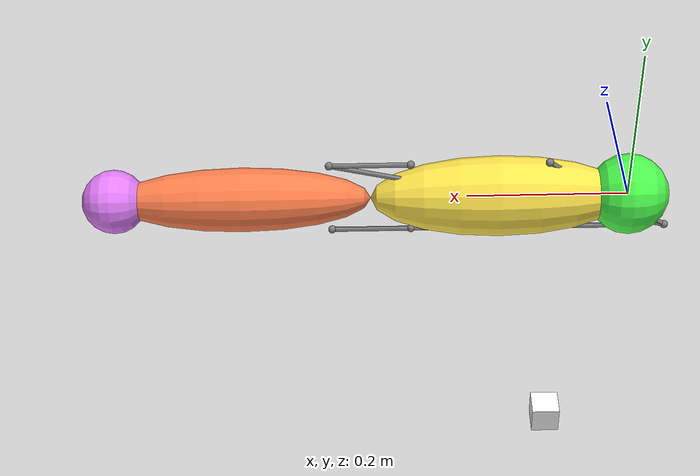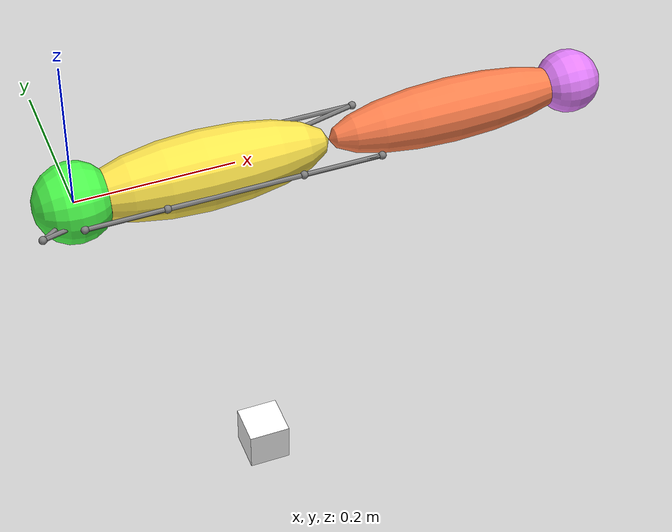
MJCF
<mujoco model="template">
	<compiler angle="radian" autolimits="true"/>
	<option timestep="0.005"/>
	<size njmax="1000" nconmax="400" nkey="1" nuser_jnt="1"/>
	<visual>
		<scale framelength="0.5" framewidth="0.01"/>
	</visual>
	<asset>
		<texture type="skybox" builtin="gradient" rgb1="1 1 1" rgb2="0.6 0.8 1" width="256" height="1536"/>
		<texture name="grid" type="2d" builtin="checker" width="512" height="512" rgb1=".1 .2 .3" rgb2=".2 .3 .4"/>
		<material name="grid" texture="grid" texrepeat="1 1" texuniform="true" reflectance=".2"/>
	</asset>
	<worldbody>
		<light directional="true"/>
		<site name="baseProximalOrigin" pos="-.05 -0.05 0" size="0.005"/>
		<site name="baseDistalOrigin" pos="0.0 -.05 0" size="0.005"/>
		<body name="ground" euler="1.571 0 0">
			<body name="base" pos="0 0 0">
				<geom type="ellipsoid" size=".05" rgba=".3 1 .3 1" fromto="-.05 0 0 .05 0 0"/>
				<inertial pos="0 0 0" mass=".86" diaginertia="0.025 0.025 0.025"/>
				<joint name="shoulder" pos="0 0 0" axis="0 1 0" range="-2.181662 0.610865" damping="0.1"/>

				<body name="ProximalForearm" pos="0 0 0">

					<inertial pos="0 0 0" mass="0.86" diaginertia="0.025 0.025 0.025"/>
					<geom type="ellipsoid" size=".05" rgba="1 .9 .3 1" fromto="0 0 0 .32 0 0"/>
					<site name="ProximalForearmProximalInsertion" pos=".1 0 -0.05" size="0.005"/>
					<site name="ProximalForearmDistalInsertion" pos=".1 0 0.05" size="0.005"/>
					<site name="ProximalForearmProximalOrigin" pos=".27 0 -0.05" size="0.005"/>
					<site name="ProximalForearmDistalOrigin" pos=".27 0 0.05" size="0.005"/>

					<body name="DistalForearm" pos="0 0 0">
						<inertial pos="0 0 0" mass="0.86" diaginertia="0.025 0.025 0.025"/>
						<geom type="ellipsoid" size=".04" rgba="1 .5 .3 1" fromto=".32 0 0 .64 0 0"/>
						<site name="DistalForearmProximalInsertion" pos=".37 0 -0.05" size="0.005"/>
						<site name="DistalForearmDistalInsertion" pos=".37 0 0.05" size="0.005"/>
						<joint name="elbow" pos=".32 0 0" axis="0 1 0" range="0 2.792527" damping="0.1"/>

						<body name="Hand" pos="0 0 0">
							<inertial pos="0 0 0" mass="0.1" diaginertia="0.025 0.025 0.025"/>
							<geom type="ellipsoid" size=".04" rgba=".9 .5 1 1" fromto=".6 0 0 .68 0 0"/>
							<site name="handsite" pos="0 0 0" rgba="1 0 0 1"/>
						</body>
					</body>
				</body>
			</body>
		</body>
		<body name="Object" pos="0.07 -0.47 0.07">
            <geom type="box" size="0.02 0.02 0.02" rgba="1 1 1 1"/>
            <site name="object_o" pos="0 0 0" rgba="1 0 0 1"/>
        </body>
	</worldbody>
	<tendon>
    <spatial name="ShoulderFlexor_tendon">
      <site site="baseProximalOrigin"/>
      <site site="ProximalForearmProximalInsertion"/>
    </spatial>
	<spatial name="ShoulderExtensor_tendon">
      <site site="baseDistalOrigin"/>
      <site site="ProximalForearmDistalInsertion"/>
    </spatial>
	<spatial name="ElbowFlexor_tendon">
      <site site="ProximalForearmProximalOrigin"/>
      <site site="DistalForearmProximalInsertion"/>
    </spatial>
	<spatial name="ElbowExtensor_tendon">
      <site site="ProximalForearmDistalOrigin"/>
      <site site="DistalForearmDistalInsertion"/>
    </spatial>
	<spatial name="BiarticulateProximal_tendon">
      <site site="baseProximalOrigin"/>
      <site site="DistalForearmProximalInsertion"/>
    </spatial>
	<spatial name="BiarticulateDistal_tendon">
      <site site="baseDistalOrigin"/>
      <site site="DistalForearmDistalInsertion"/>
    </spatial>
	</tendon>
	<actuator>
		<muscle force="500" name="ShoulderFlexor" tendon="ShoulderFlexor_tendon" lengthrange=".05 .2"/>
		<muscle force="500" name="ShoulderExtensor" tendon="ShoulderExtensor_tendon" lengthrange=".05 .2"/>
		<muscle force="500" name="ElbowFlexor" tendon="ElbowFlexor_tendon" lengthrange=".025 .1"/>
		<muscle force="500" name="ElbowExtensor" tendon="ElbowExtensor_tendon" lengthrange=".025 .1"/>
		<muscle force="500" name="BiarticulateProximal" tendon="BiarticulateProximal_tendon" lengthrange=".025 .35"/>
		<muscle force="500" name="BiarticulateDistal" tendon="BiarticulateDistal_tendon" lengthrange=".025 .35"/>
    </actuator>
</mujoco>
